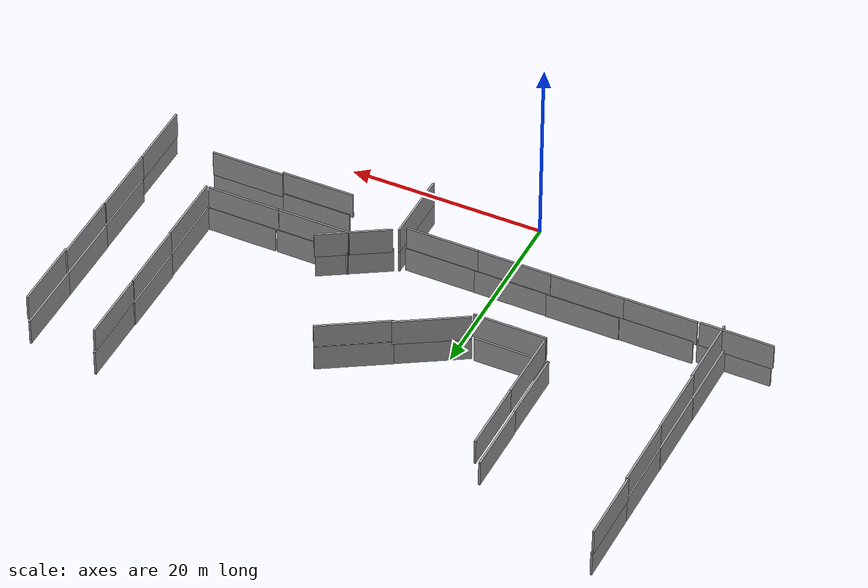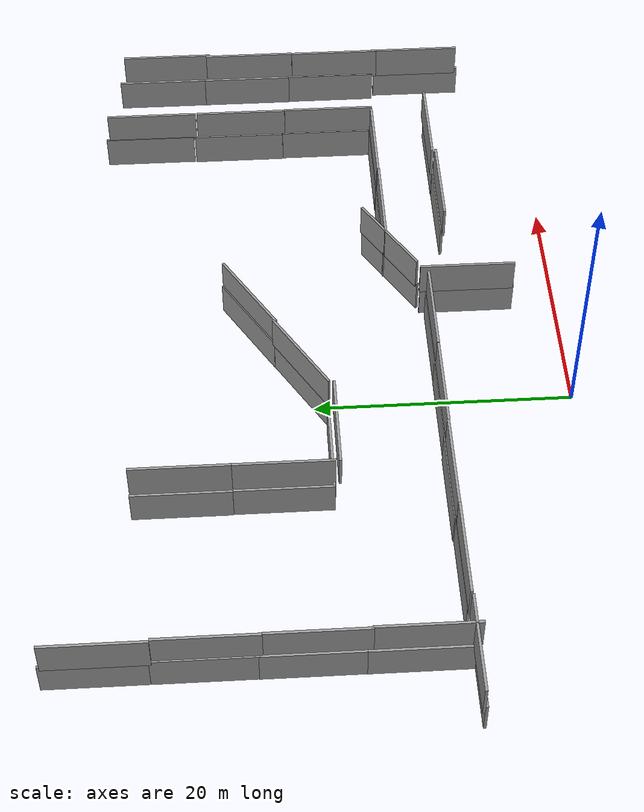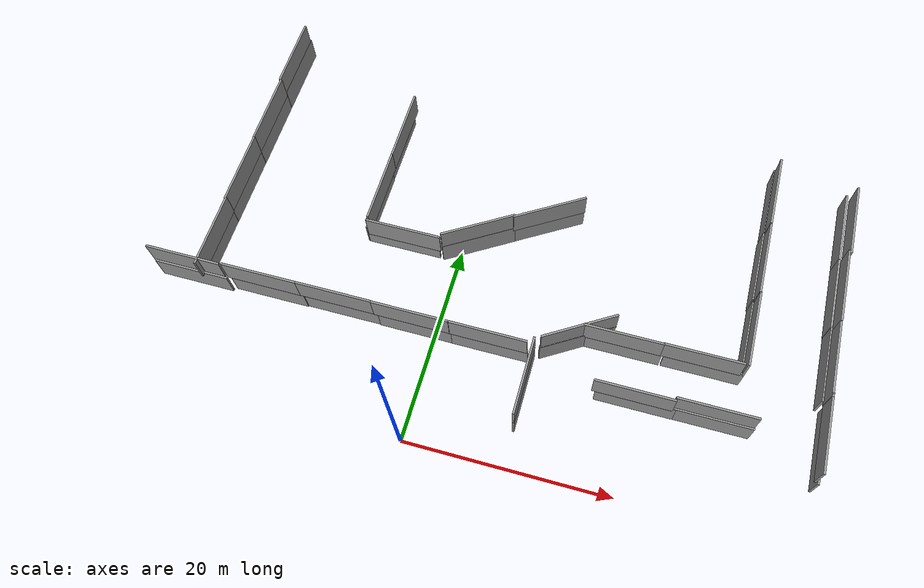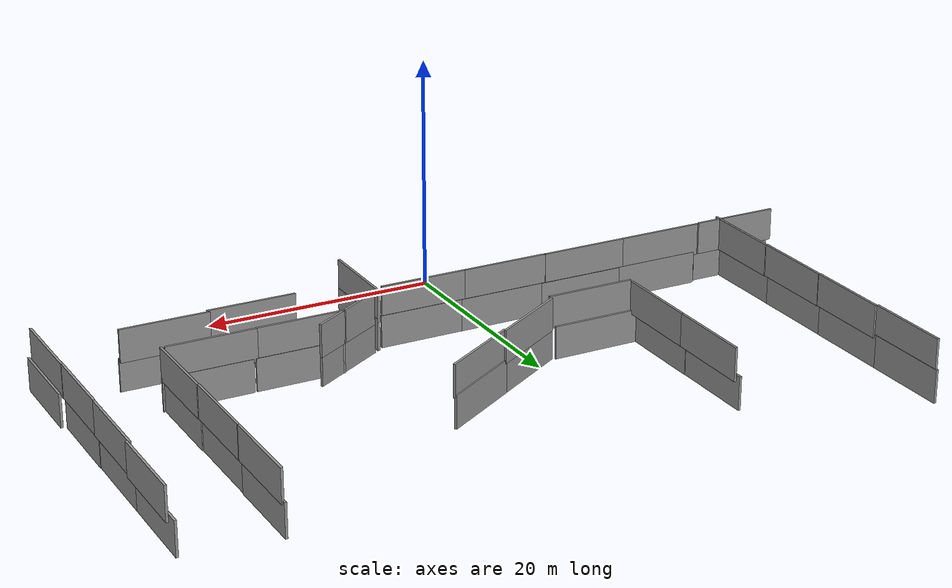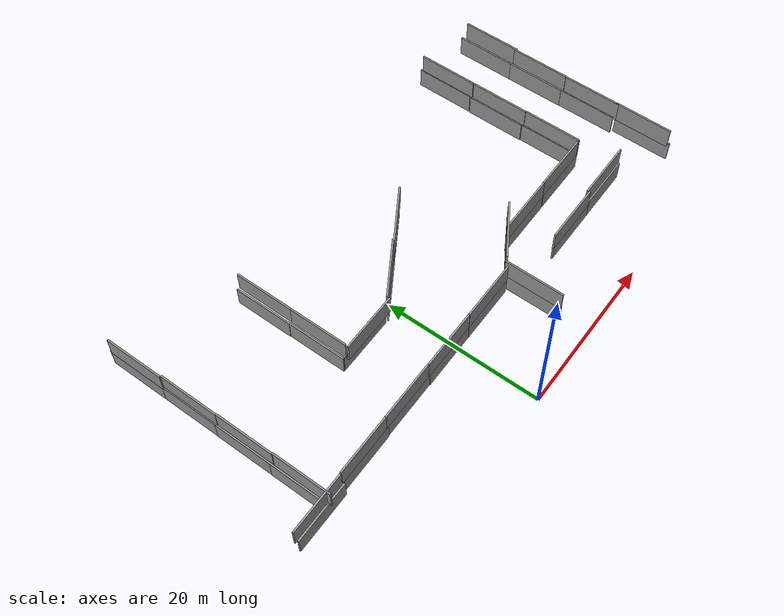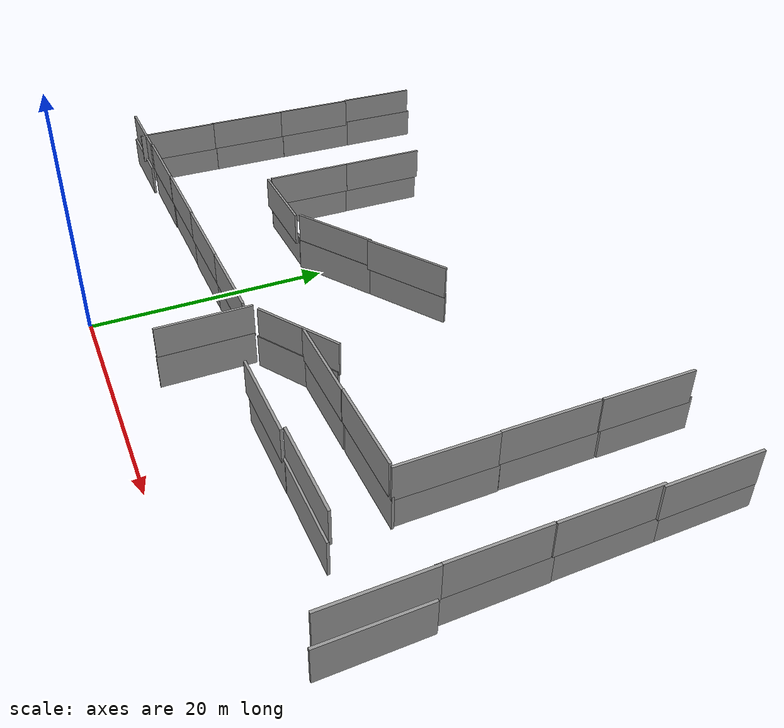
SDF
<sdf version="1.6">
 <world name="world">
  <model name="ground_plane">
   <static>1</static>
   <link name="link">
    <collision name="collision">
     <geometry><plane><normal>0 0 1</normal><size>100 100</size></plane></geometry>
     <surface><friction><ode><mu>100</mu><mu2>50</mu2></ode></friction></surface>
    </collision>
    <velocity_decay><linear>0</linear><angular>0</angular></velocity_decay>
   </link>
  </model>
  <model name="grey_wall_clone_clone_clone_clone">
   <static>1</static>
   <link name="link">
    <pose>0 0 1.4 0 -0 0</pose>
    <collision name="collision"><geometry><box><size>7.5 0.2 2.8</size></box></geometry></collision>
    <visual name="visual">
     <cast_shadows>0</cast_shadows>
     <geometry><box><size>7.5 0.2 2.8</size></box></geometry>
     <material>
      <script>
       <uri>model://grey_wall/materials/scripts</uri>
       <uri>model://grey_wall/materials/textures</uri>
       <name>vrc/grey_wall</name>
      </script>
     </material>
    </visual>
   </link>
   <pose>9.72423 7.25977 0 0 -0 1.57</pose>
  </model>
  <model name="grey_wall_clone_clone_clone_0">
   <static>1</static>
   <link name="link">
    <pose>0 0 1.4 0 -0 0</pose>
    <collision name="collision"><geometry><box><size>7.5 0.2 2.8</size></box></geometry></collision>
    <visual name="visual">
     <cast_shadows>0</cast_shadows>
     <geometry><box><size>7.5 0.2 2.8</size></box></geometry>
     <material>
      <script>
       <uri>model://grey_wall/materials/scripts</uri>
       <uri>model://grey_wall/materials/textures</uri>
       <name>vrc/grey_wall</name>
      </script>
     </material>
    </visual>
   </link>
   <pose>9.7042 7.30584 2.5 0 -0 1.57</pose>
  </model>
  <model name="grey_wall_clone_0">
   <static>1</static>
   <link name="link">
    <pose>0 0 1.4 0 -0 0</pose>
    <collision name="collision"><geometry><box><size>7.5 0.2 2.8</size></box></geometry></collision>
    <visual name="visual">
     <cast_shadows>0</cast_shadows>
     <geometry><box><size>7.5 0.2 2.8</size></box></geometry>
     <material>
      <script>
       <uri>model://grey_wall/materials/scripts</uri>
       <uri>model://grey_wall/materials/textures</uri>
       <name>vrc/grey_wall</name>
      </script>
     </material>
    </visual>
   </link>
   <pose>5.52403 10.5022 0 0 -0 0</pose>
  </model>
  <model name="grey_wall_clone_clone_0">
   <static>1</static>
   <link name="link">
    <pose>0 0 1.4 0 -0 0</pose>
    <collision name="collision"><geometry><box><size>7.5 0.2 2.8</size></box></geometry></collision>
    <visual name="visual">
     <cast_shadows>0</cast_shadows>
     <geometry><box><size>7.5 0.2 2.8</size></box></geometry>
     <material>
      <script>
       <uri>model://grey_wall/materials/scripts</uri>
       <uri>model://grey_wall/materials/textures</uri>
       <name>vrc/grey_wall</name>
      </script>
     </material>
    </visual>
   </link>
   <pose>5.43048 10.4463 2.5 0 -0 0</pose>
  </model>
  <model name="grey_wall_clone_0_clone">
   <static>1</static>
   <link name="link">
    <pose>0 0 1.4 0 -0 0</pose>
    <collision name="collision"><geometry><box><size>7.5 0.2 2.8</size></box></geometry></collision>
    <visual name="visual">
     <cast_shadows>0</cast_shadows>
     <geometry><box><size>7.5 0.2 2.8</size></box></geometry>
     <material>
      <script>
       <uri>model://grey_wall/materials/scripts</uri>
       <uri>model://grey_wall/materials/textures</uri>
       <name>vrc/grey_wall</name>
      </script>
     </material>
    </visual>
   </link>
   <pose>-1.73699 10.5164 0 0 -0 0</pose>
  </model>
  <model name="grey_wall_clone_clone_0_clone">
   <static>1</static>
   <link name="link">
    <pose>0 0 1.4 0 -0 0</pose>
    <collision name="collision"><geometry><box><size>7.5 0.2 2.8</size></box></geometry></collision>
    <visual name="visual">
     <cast_shadows>0</cast_shadows>
     <geometry><box><size>7.5 0.2 2.8</size></box></geometry>
     <material>
      <script>
       <uri>model://grey_wall/materials/scripts</uri>
       <uri>model://grey_wall/materials/textures</uri>
       <name>vrc/grey_wall</name>
      </script>
     </material>
    </visual>
   </link>
   <pose>-2.10122 10.4554 2.5 0 -0 0</pose>
  </model>
  <model name="grey_wall_clone_clone_clone_clone_clone_0_clone_0_clone_0_clone_2">
   <static>1</static>
   <link name="link">
    <pose>0 0 1.4 0 -0 0</pose>
    <collision name="collision"><geometry><box><size>7.5 0.2 2.8</size></box></geometry></collision>
    <visual name="visual">
     <cast_shadows>0</cast_shadows>
     <geometry><box><size>7.5 0.2 2.8</size></box></geometry>
     <material>
      <script>
       <uri>model://grey_wall/materials/scripts</uri>
       <uri>model://grey_wall/materials/textures</uri>
       <name>vrc/grey_wall</name>
      </script>
     </material>
    </visual>
   </link>
   <pose>36.766 8.89985 0 0 -0 1.57</pose>
  </model>
  <model name="grey_wall_clone_clone_clone_0_clone_0_clone_0_clone_0_clone_clone_1">
   <static>1</static>
   <link name="link">
    <pose>0 0 1.4 0 -0 0</pose>
    <collision name="collision"><geometry><box><size>7.5 0.2 2.8</size></box></geometry></collision>
    <visual name="visual">
     <cast_shadows>0</cast_shadows>
     <geometry><box><size>7.5 0.2 2.8</size></box></geometry>
     <material>
      <script>
       <uri>model://grey_wall/materials/scripts</uri>
       <uri>model://grey_wall/materials/textures</uri>
       <name>vrc/grey_wall</name>
      </script>
     </material>
    </visual>
   </link>
   <pose>36.5068 9.13269 2.5 0 -0 1.57</pose>
  </model>
  <model name="grey_wall_clone_1_clone_clone_0">
   <static>1</static>
   <link name="link">
    <pose>0 0 1.4 0 -0 0</pose>
    <collision name="collision"><geometry><box><size>7.5 0.2 2.8</size></box></geometry></collision>
    <visual name="visual">
     <cast_shadows>0</cast_shadows>
     <geometry><box><size>7.5 0.2 2.8</size></box></geometry>
     <material>
      <script>
       <uri>model://grey_wall/materials/scripts</uri>
       <uri>model://grey_wall/materials/textures</uri>
       <name>vrc/grey_wall</name>
      </script>
     </material>
    </visual>
   </link>
   <pose>25.3238 13.5362 0 0 -0 0</pose>
  </model>
  <model name="grey_wall_clone_1_clone_clone_1">
   <static>1</static>
   <link name="link">
    <pose>0 0 1.4 0 -0 0</pose>
    <collision name="collision"><geometry><box><size>7.5 0.2 2.8</size></box></geometry></collision>
    <visual name="visual">
     <cast_shadows>0</cast_shadows>
     <geometry><box><size>7.5 0.2 2.8</size></box></geometry>
     <material>
      <script>
       <uri>model://grey_wall/materials/scripts</uri>
       <uri>model://grey_wall/materials/textures</uri>
       <name>vrc/grey_wall</name>
      </script>
     </material>
    </visual>
   </link>
   <pose>17.6484 13.518 0 0 -0 0</pose>
  </model>
  <model name="grey_wall_clone_clone_2_clone_0_clone_0">
   <static>1</static>
   <link name="link">
    <pose>0 0 1.4 0 -0 0</pose>
    <collision name="collision"><geometry><box><size>7.5 0.2 2.8</size></box></geometry></collision>
    <visual name="visual">
     <cast_shadows>0</cast_shadows>
     <geometry><box><size>7.5 0.2 2.8</size></box></geometry>
     <material>
      <script>
       <uri>model://grey_wall/materials/scripts</uri>
       <uri>model://grey_wall/materials/textures</uri>
       <name>vrc/grey_wall</name>
      </script>
     </material>
    </visual>
   </link>
   <pose>24.947 13.4906 2.5 0 -0 0</pose>
  </model>
  <model name="grey_wall_clone_clone_2_clone_0_clone_1">
   <static>1</static>
   <link name="link">
    <pose>0 0 1.4 0 -0 0</pose>
    <collision name="collision"><geometry><box><size>7.5 0.2 2.8</size></box></geometry></collision>
    <visual name="visual">
     <cast_shadows>0</cast_shadows>
     <geometry><box><size>7.5 0.2 2.8</size></box></geometry>
     <material>
      <script>
       <uri>model://grey_wall/materials/scripts</uri>
       <uri>model://grey_wall/materials/textures</uri>
       <name>vrc/grey_wall</name>
      </script>
     </material>
    </visual>
   </link>
   <pose>17.5123 13.4523 2.5 0 -0 0</pose>
  </model>
  <model name="grey_wall_clone_1_clone_clone_2_clone">
   <static>1</static>
   <link name="link">
    <pose>0 0 1.4 0 -0 0</pose>
    <collision name="collision"><geometry><box><size>7.5 0.2 2.8</size></box></geometry></collision>
    <visual name="visual">
     <cast_shadows>0</cast_shadows>
     <geometry><box><size>7.5 0.2 2.8</size></box></geometry>
     <material>
      <script>
       <uri>model://grey_wall/materials/scripts</uri>
       <uri>model://grey_wall/materials/textures</uri>
       <name>vrc/grey_wall</name>
      </script>
     </material>
    </visual>
   </link>
   <pose>13.3998 13.0991 -0 0 -0 0.55</pose>
  </model>
  <model name="grey_wall_clone_1_clone_clone_2_clone_0">
   <static>1</static>
   <link name="link">
    <pose>0 0 1.4 0 -0 0</pose>
    <collision name="collision"><geometry><box><size>7.5 0.2 2.8</size></box></geometry></collision>
    <visual name="visual">
     <cast_shadows>0</cast_shadows>
     <geometry><box><size>7.5 0.2 2.8</size></box></geometry>
     <material>
      <script>
       <uri>model://grey_wall/materials/scripts</uri>
       <uri>model://grey_wall/materials/textures</uri>
       <name>vrc/grey_wall</name>
      </script>
     </material>
    </visual>
   </link>
   <pose>13.4572 13.209 2.5 0 -0 0.55</pose>
  </model>
  <model name="grey_wall_clone_1_clone_0_clone">
   <static>1</static>
   <link name="link">
    <pose>0 0 1.4 0 -0 0</pose>
    <collision name="collision"><geometry><box><size>7.5 0.2 2.8</size></box></geometry></collision>
    <visual name="visual">
     <cast_shadows>0</cast_shadows>
     <geometry><box><size>7.5 0.2 2.8</size></box></geometry>
     <material>
      <script>
       <uri>model://grey_wall/materials/scripts</uri>
       <uri>model://grey_wall/materials/textures</uri>
       <name>vrc/grey_wall</name>
      </script>
     </material>
    </visual>
   </link>
   <pose>26.9868 8.61492 0 0 -0 0</pose>
  </model>
  <model name="grey_wall_clone_1_clone_0_clone_0">
   <static>1</static>
   <link name="link">
    <pose>0 0 1.4 0 -0 0</pose>
    <collision name="collision"><geometry><box><size>7.5 0.2 2.8</size></box></geometry></collision>
    <visual name="visual">
     <cast_shadows>0</cast_shadows>
     <geometry><box><size>7.5 0.2 2.8</size></box></geometry>
     <material>
      <script>
       <uri>model://grey_wall/materials/scripts</uri>
       <uri>model://grey_wall/materials/textures</uri>
       <name>vrc/grey_wall</name>
      </script>
     </material>
    </visual>
   </link>
   <pose>19.8813 8.59599 0 0 -0 0</pose>
  </model>
  <model name="grey_wall_clone_clone_2_clone_0_clone_2">
   <static>1</static>
   <link name="link">
    <pose>0 0 1.4 0 -0 0</pose>
    <collision name="collision"><geometry><box><size>7.5 0.2 2.8</size></box></geometry></collision>
    <visual name="visual">
     <cast_shadows>0</cast_shadows>
     <geometry><box><size>7.5 0.2 2.8</size></box></geometry>
     <material>
      <script>
       <uri>model://grey_wall/materials/scripts</uri>
       <uri>model://grey_wall/materials/textures</uri>
       <name>vrc/grey_wall</name>
      </script>
     </material>
    </visual>
   </link>
   <pose>26.9348 8.78503 2.5 0 -0 0</pose>
  </model>
  <model name="grey_wall_clone_clone_2_clone_0_clone_3">
   <static>1</static>
   <link name="link">
    <pose>0 0 1.4 0 -0 0</pose>
    <collision name="collision"><geometry><box><size>7.5 0.2 2.8</size></box></geometry></collision>
    <visual name="visual">
     <cast_shadows>0</cast_shadows>
     <geometry><box><size>7.5 0.2 2.8</size></box></geometry>
     <material>
      <script>
       <uri>model://grey_wall/materials/scripts</uri>
       <uri>model://grey_wall/materials/textures</uri>
       <name>vrc/grey_wall</name>
      </script>
     </material>
    </visual>
   </link>
   <pose>19.5591 8.50168 2.5 0 -0 0</pose>
  </model>
  <model name="grey_wall_clone_clone_0_clone_clone_clone">
   <static>1</static>
   <link name="link">
    <pose>0 0 1.4 0 -0 0</pose>
    <collision name="collision"><geometry><box><size>7.5 0.2 2.8</size></box></geometry></collision>
    <visual name="visual">
     <cast_shadows>0</cast_shadows>
     <geometry><box><size>7.5 0.2 2.8</size></box></geometry>
     <material>
      <script>
       <uri>model://grey_wall/materials/scripts</uri>
       <uri>model://grey_wall/materials/textures</uri>
       <name>vrc/grey_wall</name>
      </script>
     </material>
    </visual>
   </link>
   <pose>-9.61987 10.4873 2.5 0 -0 0</pose>
  </model>
  <model name="grey_wall_clone_0_clone_clone_0">
   <static>1</static>
   <link name="link">
    <pose>0 0 1.4 0 -0 0</pose>
    <collision name="collision"><geometry><box><size>7.5 0.2 2.8</size></box></geometry></collision>
    <visual name="visual">
     <cast_shadows>0</cast_shadows>
     <geometry><box><size>7.5 0.2 2.8</size></box></geometry>
     <material>
      <script>
       <uri>model://grey_wall/materials/scripts</uri>
       <uri>model://grey_wall/materials/textures</uri>
       <name>vrc/grey_wall</name>
      </script>
     </material>
    </visual>
   </link>
   <pose>-9.23745 10.5709 0 0 -0 0</pose>
  </model>
  <model name="grey_wall_clone_0_clone_clone_0_clone">
   <static>1</static>
   <link name="link">
    <pose>0 0 1.4 0 -0 0</pose>
    <collision name="collision"><geometry><box><size>7.5 0.2 2.8</size></box></geometry></collision>
    <visual name="visual">
     <cast_shadows>0</cast_shadows>
     <geometry><box><size>7.5 0.2 2.8</size></box></geometry>
     <material>
      <script>
       <uri>model://grey_wall/materials/scripts</uri>
       <uri>model://grey_wall/materials/textures</uri>
       <name>vrc/grey_wall</name>
      </script>
     </material>
    </visual>
   </link>
   <pose>-16.7445 10.4949 0 0 -0 0</pose>
  </model>
  <model name="grey_wall_clone_clone_0_clone_clone_clone_clone">
   <static>1</static>
   <link name="link">
    <pose>0 0 1.4 0 -0 0</pose>
    <collision name="collision"><geometry><box><size>7.5 0.2 2.8</size></box></geometry></collision>
    <visual name="visual">
     <cast_shadows>0</cast_shadows>
     <geometry><box><size>7.5 0.2 2.8</size></box></geometry>
     <material>
      <script>
       <uri>model://grey_wall/materials/scripts</uri>
       <uri>model://grey_wall/materials/textures</uri>
       <name>vrc/grey_wall</name>
      </script>
     </material>
    </visual>
   </link>
   <pose>-17.0835 10.4723 2.5 0 -0 0</pose>
  </model>
  <model name="grey_wall_clone_clone_clone_clone_clone_0_clone_0_clone_0_clone_2_clone">
   <static>1</static>
   <link name="link">
    <pose>0 0 1.4 0 -0 0</pose>
    <collision name="collision"><geometry><box><size>7.5 0.2 2.8</size></box></geometry></collision>
    <visual name="visual">
     <cast_shadows>0</cast_shadows>
     <geometry><box><size>7.5 0.2 2.8</size></box></geometry>
     <material>
      <script>
       <uri>model://grey_wall/materials/scripts</uri>
       <uri>model://grey_wall/materials/textures</uri>
       <name>vrc/grey_wall</name>
      </script>
     </material>
    </visual>
   </link>
   <pose>36.3415 16.5605 0 0 -0 1.57</pose>
  </model>
  <model name="grey_wall_clone_clone_clone_clone_clone_0_clone_0_clone_0_clone_2_clone_0">
   <static>1</static>
   <link name="link">
    <pose>0 0 1.4 0 -0 0</pose>
    <collision name="collision"><geometry><box><size>7.5 0.2 2.8</size></box></geometry></collision>
    <visual name="visual">
     <cast_shadows>0</cast_shadows>
     <geometry><box><size>7.5 0.2 2.8</size></box></geometry>
     <material>
      <script>
       <uri>model://grey_wall/materials/scripts</uri>
       <uri>model://grey_wall/materials/textures</uri>
       <name>vrc/grey_wall</name>
      </script>
     </material>
    </visual>
   </link>
   <pose>36.3089 24.0074 0 0 -0 1.57</pose>
  </model>
  <model name="grey_wall_clone_clone_clone_clone_clone_0_clone_0_clone_0_clone_2_clone_1">
   <static>1</static>
   <link name="link">
    <pose>0 0 1.4 0 -0 0</pose>
    <collision name="collision"><geometry><box><size>7.5 0.2 2.8</size></box></geometry></collision>
    <visual name="visual">
     <cast_shadows>0</cast_shadows>
     <geometry><box><size>7.5 0.2 2.8</size></box></geometry>
     <material>
      <script>
       <uri>model://grey_wall/materials/scripts</uri>
       <uri>model://grey_wall/materials/textures</uri>
       <name>vrc/grey_wall</name>
      </script>
     </material>
    </visual>
   </link>
   <pose>36.3137 31.4883 0 0 -0 1.57</pose>
  </model>
  <model name="grey_wall_clone_clone_clone_0_clone_0_clone_0_clone_0_clone_clone_1_clone">
   <static>1</static>
   <link name="link">
    <pose>0 0 1.4 0 -0 0</pose>
    <collision name="collision"><geometry><box><size>7.5 0.2 2.8</size></box></geometry></collision>
    <visual name="visual">
     <cast_shadows>0</cast_shadows>
     <geometry><box><size>7.5 0.2 2.8</size></box></geometry>
     <material>
      <script>
       <uri>model://grey_wall/materials/scripts</uri>
       <uri>model://grey_wall/materials/textures</uri>
       <name>vrc/grey_wall</name>
      </script>
     </material>
    </visual>
   </link>
   <pose>36.4797 16.2032 2.5 0 -0 1.57</pose>
  </model>
  <model name="grey_wall_clone_clone_clone_0_clone_0_clone_0_clone_0_clone_clone_1_clone_0">
   <static>1</static>
   <link name="link">
    <pose>0 0 1.4 0 -0 0</pose>
    <collision name="collision"><geometry><box><size>7.5 0.2 2.8</size></box></geometry></collision>
    <visual name="visual">
     <cast_shadows>0</cast_shadows>
     <geometry><box><size>7.5 0.2 2.8</size></box></geometry>
     <material>
      <script>
       <uri>model://grey_wall/materials/scripts</uri>
       <uri>model://grey_wall/materials/textures</uri>
       <name>vrc/grey_wall</name>
      </script>
     </material>
    </visual>
   </link>
   <pose>36.5252 23.7606 2.5 0 -0 1.57</pose>
  </model>
  <model name="grey_wall_clone_clone_clone_0_clone_0_clone_0_clone_0_clone_clone_1_clone_1">
   <static>1</static>
   <link name="link">
    <pose>0 0 1.4 0 -0 0</pose>
    <collision name="collision"><geometry><box><size>7.5 0.2 2.8</size></box></geometry></collision>
    <visual name="visual">
     <cast_shadows>0</cast_shadows>
     <geometry><box><size>7.5 0.2 2.8</size></box></geometry>
     <material>
      <script>
       <uri>model://grey_wall/materials/scripts</uri>
       <uri>model://grey_wall/materials/textures</uri>
       <name>vrc/grey_wall</name>
      </script>
     </material>
    </visual>
   </link>
   <pose>36.7015 30.9843 2.5 0 -0 1.57</pose>
  </model>
  <model name="grey_wall_clone_clone_clone_clone_clone_clone_clone_0_clone_1">
   <static>1</static>
   <link name="link">
    <pose>0 0 1.4 0 -0 0</pose>
    <collision name="collision"><geometry><box><size>7.5 0.2 2.8</size></box></geometry></collision>
    <visual name="visual">
     <cast_shadows>0</cast_shadows>
     <geometry><box><size>7.5 0.2 2.8</size></box></geometry>
     <material>
      <script>
       <uri>model://grey_wall/materials/scripts</uri>
       <uri>model://grey_wall/materials/textures</uri>
       <name>vrc/grey_wall</name>
      </script>
     </material>
    </visual>
   </link>
   <pose>-23.473 36.1439 0 0 -0 1.57</pose>
  </model>
  <model name="grey_wall_clone_clone_clone_clone_clone_clone_clone_0_clone_2">
   <static>1</static>
   <link name="link">
    <pose>0 0 1.4 0 -0 0</pose>
    <collision name="collision"><geometry><box><size>7.5 0.2 2.8</size></box></geometry></collision>
    <visual name="visual">
     <cast_shadows>0</cast_shadows>
     <geometry><box><size>7.5 0.2 2.8</size></box></geometry>
     <material>
      <script>
       <uri>model://grey_wall/materials/scripts</uri>
       <uri>model://grey_wall/materials/textures</uri>
       <name>vrc/grey_wall</name>
      </script>
     </material>
    </visual>
   </link>
   <pose>-23.4833 28.6502 0 0 -0 1.57</pose>
  </model>
  <model name="grey_wall_clone_clone_clone_clone_clone_clone_clone_0_clone_3">
   <static>1</static>
   <link name="link">
    <pose>0 0 1.4 0 -0 0</pose>
    <collision name="collision"><geometry><box><size>7.5 0.2 2.8</size></box></geometry></collision>
    <visual name="visual">
     <cast_shadows>0</cast_shadows>
     <geometry><box><size>7.5 0.2 2.8</size></box></geometry>
     <material>
      <script>
       <uri>model://grey_wall/materials/scripts</uri>
       <uri>model://grey_wall/materials/textures</uri>
       <name>vrc/grey_wall</name>
      </script>
     </material>
    </visual>
   </link>
   <pose>-23.5068 21.2609 0 0 -0 1.57</pose>
  </model>
  <model name="grey_wall_clone_clone_clone_clone_clone_clone_clone_0_clone_3_clone">
   <static>1</static>
   <link name="link">
    <pose>0 0 1.4 0 -0 0</pose>
    <collision name="collision"><geometry><box><size>7.5 0.2 2.8</size></box></geometry></collision>
    <visual name="visual">
     <cast_shadows>0</cast_shadows>
     <geometry><box><size>7.5 0.2 2.8</size></box></geometry>
     <material>
      <script>
       <uri>model://grey_wall/materials/scripts</uri>
       <uri>model://grey_wall/materials/textures</uri>
       <name>vrc/grey_wall</name>
      </script>
     </material>
    </visual>
   </link>
   <pose>-23.5242 13.8853 0 0 -0 1.57</pose>
  </model>
  <model name="grey_wall_clone_0_clone_clone_0_clone_0">
   <static>1</static>
   <link name="link">
    <pose>0 0 1.4 0 -0 0</pose>
    <collision name="collision"><geometry><box><size>7.5 0.2 2.8</size></box></geometry></collision>
    <visual name="visual">
     <cast_shadows>0</cast_shadows>
     <geometry><box><size>7.5 0.2 2.8</size></box></geometry>
     <material>
      <script>
       <uri>model://grey_wall/materials/scripts</uri>
       <uri>model://grey_wall/materials/textures</uri>
       <name>vrc/grey_wall</name>
      </script>
     </material>
    </visual>
   </link>
   <pose>-24.5011 10.1445 0 0 -0 0</pose>
  </model>
  <model name="grey_wall_clone_clone_clone_clone_clone_0_clone_0_clone_0_clone_2_clone_clone_3_clone_2">
   <static>1</static>
   <link name="link">
    <pose>0 0 1.4 0 -0 0</pose>
    <collision name="collision"><geometry><box><size>7.5 0.2 2.8</size></box></geometry></collision>
    <visual name="visual">
     <cast_shadows>0</cast_shadows>
     <geometry><box><size>7.5 0.2 2.8</size></box></geometry>
     <material>
      <script>
       <uri>model://grey_wall/materials/scripts</uri>
       <uri>model://grey_wall/materials/textures</uri>
       <name>vrc/grey_wall</name>
      </script>
     </material>
    </visual>
   </link>
   <pose>-9.5717 30.1479 0 0 -0 1.57</pose>
  </model>
  <model name="grey_wall_clone_clone_clone_clone_clone_0_clone_0_clone_0_clone_2_clone_clone_3_clone_3">
   <static>1</static>
   <link name="link">
    <pose>0 0 1.4 0 -0 0</pose>
    <collision name="collision"><geometry><box><size>7.5 0.2 2.8</size></box></geometry></collision>
    <visual name="visual">
     <cast_shadows>0</cast_shadows>
     <geometry><box><size>7.5 0.2 2.8</size></box></geometry>
     <material>
      <script>
       <uri>model://grey_wall/materials/scripts</uri>
       <uri>model://grey_wall/materials/textures</uri>
       <name>vrc/grey_wall</name>
      </script>
     </material>
    </visual>
   </link>
   <pose>-9.5391 22.7069 0 0 -0 1.57</pose>
  </model>
  <model name="grey_wall_clone_1_clone_clone_0_clone_0_clone_1_clone_clone_0">
   <static>1</static>
   <link name="link">
    <pose>0 0 1.4 0 -0 0</pose>
    <collision name="collision"><geometry><box><size>7.5 0.2 2.8</size></box></geometry></collision>
    <visual name="visual">
     <cast_shadows>0</cast_shadows>
     <geometry><box><size>7.5 0.2 2.8</size></box></geometry>
     <material>
      <script>
       <uri>model://grey_wall/materials/scripts</uri>
       <uri>model://grey_wall/materials/textures</uri>
       <name>vrc/grey_wall</name>
      </script>
     </material>
    </visual>
   </link>
   <pose>-5.75309 19.0274 0 0 -0 0</pose>
  </model>
  <model name="grey_wall_clone_1_clone_clone_2_clone_clone_0">
   <static>1</static>
   <link name="link">
    <pose>0 0 1.4 0 -0 0</pose>
    <collision name="collision"><geometry><box><size>7.5 0.2 2.8</size></box></geometry></collision>
    <visual name="visual">
     <cast_shadows>0</cast_shadows>
     <geometry><box><size>7.5 0.2 2.8</size></box></geometry>
     <material>
      <script>
       <uri>model://grey_wall/materials/scripts</uri>
       <uri>model://grey_wall/materials/textures</uri>
       <name>vrc/grey_wall</name>
      </script>
     </material>
    </visual>
   </link>
   <pose>1.50407 20.868 -0 0 -0 0.55</pose>
  </model>
  <model name="grey_wall_clone_1_clone_clone_2_clone_clone_1">
   <static>1</static>
   <link name="link">
    <pose>0 0 1.4 0 -0 0</pose>
    <collision name="collision"><geometry><box><size>7.5 0.2 2.8</size></box></geometry></collision>
    <visual name="visual">
     <cast_shadows>0</cast_shadows>
     <geometry><box><size>7.5 0.2 2.8</size></box></geometry>
     <material>
      <script>
       <uri>model://grey_wall/materials/scripts</uri>
       <uri>model://grey_wall/materials/textures</uri>
       <name>vrc/grey_wall</name>
      </script>
     </material>
    </visual>
   </link>
   <pose>7.72291 24.7001 -0 0 -0 0.55</pose>
  </model>
  <model name="grey_wall_clone_clone_clone_clone_clone_0_clone_0_clone_0_clone_2_clone_5">
   <static>1</static>
   <link name="link">
    <pose>0 0 1.4 0 -0 0</pose>
    <collision name="collision"><geometry><box><size>7.5 0.2 2.8</size></box></geometry></collision>
    <visual name="visual">
     <cast_shadows>0</cast_shadows>
     <geometry><box><size>7.5 0.2 2.8</size></box></geometry>
     <material>
      <script>
       <uri>model://grey_wall/materials/scripts</uri>
       <uri>model://grey_wall/materials/textures</uri>
       <name>vrc/grey_wall</name>
      </script>
     </material>
    </visual>
   </link>
   <pose>28.8349 17.386 0 0 -0 1.57</pose>
  </model>
  <model name="grey_wall_clone_clone_clone_clone_clone_0_clone_0_clone_0_clone_2_clone_6">
   <static>1</static>
   <link name="link">
    <pose>0 0 1.4 0 -0 0</pose>
    <collision name="collision"><geometry><box><size>7.5 0.2 2.8</size></box></geometry></collision>
    <visual name="visual">
     <cast_shadows>0</cast_shadows>
     <geometry><box><size>7.5 0.2 2.8</size></box></geometry>
     <material>
      <script>
       <uri>model://grey_wall/materials/scripts</uri>
       <uri>model://grey_wall/materials/textures</uri>
       <name>vrc/grey_wall</name>
      </script>
     </material>
    </visual>
   </link>
   <pose>28.7752 24.9437 0 0 -0 1.57</pose>
  </model>
  <model name="grey_wall_clone_clone_clone_clone_clone_0_clone_0_clone_0_clone_2_clone_7">
   <static>1</static>
   <link name="link">
    <pose>0 0 1.4 0 -0 0</pose>
    <collision name="collision"><geometry><box><size>7.5 0.2 2.8</size></box></geometry></collision>
    <visual name="visual">
     <cast_shadows>0</cast_shadows>
     <geometry><box><size>7.5 0.2 2.8</size></box></geometry>
     <material>
      <script>
       <uri>model://grey_wall/materials/scripts</uri>
       <uri>model://grey_wall/materials/textures</uri>
       <name>vrc/grey_wall</name>
      </script>
     </material>
    </visual>
   </link>
   <pose>28.8403 32.5574 0 0 -0 1.57</pose>
  </model>
  <model name="grey_wall_clone_clone_clone_0_clone_0_clone_0_clone_0_clone_clone_1_clone_clone">
   <static>1</static>
   <link name="link">
    <pose>0 0 1.4 0 -0 0</pose>
    <collision name="collision"><geometry><box><size>7.5 0.2 2.8</size></box></geometry></collision>
    <visual name="visual">
     <cast_shadows>0</cast_shadows>
     <geometry><box><size>7.5 0.2 2.8</size></box></geometry>
     <material>
      <script>
       <uri>model://grey_wall/materials/scripts</uri>
       <uri>model://grey_wall/materials/textures</uri>
       <name>vrc/grey_wall</name>
      </script>
     </material>
    </visual>
   </link>
   <pose>28.9702 17.1682 2.5 0 -0 1.57</pose>
  </model>
  <model name="grey_wall_clone_clone_clone_0_clone_0_clone_0_clone_0_clone_clone_1_clone_clone_clone">
   <static>1</static>
   <link name="link">
    <pose>0 0 1.4 0 -0 0</pose>
    <collision name="collision"><geometry><box><size>7.5 0.2 2.8</size></box></geometry></collision>
    <visual name="visual">
     <cast_shadows>0</cast_shadows>
     <geometry><box><size>7.5 0.2 2.8</size></box></geometry>
     <material>
      <script>
       <uri>model://grey_wall/materials/scripts</uri>
       <uri>model://grey_wall/materials/textures</uri>
       <name>vrc/grey_wall</name>
      </script>
     </material>
    </visual>
   </link>
   <pose>28.9215 24.6892 2.5 0 -0 1.57</pose>
  </model>
  <model name="grey_wall_clone_clone_clone_0_clone_0_clone_0_clone_0_clone_clone_1_clone_clone_clone_0">
   <static>1</static>
   <link name="link">
    <pose>0 0 1.4 0 -0 0</pose>
    <collision name="collision"><geometry><box><size>7.5 0.2 2.8</size></box></geometry></collision>
    <visual name="visual">
     <cast_shadows>0</cast_shadows>
     <geometry><box><size>7.5 0.2 2.8</size></box></geometry>
     <material>
      <script>
       <uri>model://grey_wall/materials/scripts</uri>
       <uri>model://grey_wall/materials/textures</uri>
       <name>vrc/grey_wall</name>
      </script>
     </material>
    </visual>
   </link>
   <pose>28.9202 32.2853 2.5 0 -0 1.57</pose>
  </model>
  <model name="grey_wall_clone_clone_0_clone_clone">
   <static>1</static>
   <link name="link">
    <pose>0 0 1.4 0 -0 0</pose>
    <collision name="collision"><geometry><box><size>7.5 0.2 2.8</size></box></geometry></collision>
    <visual name="visual">
     <cast_shadows>0</cast_shadows>
     <geometry><box><size>7.5 0.2 2.8</size></box></geometry>
     <material>
      <script>
       <uri>model://grey_wall/materials/scripts</uri>
       <uri>model://grey_wall/materials/textures</uri>
       <name>vrc/grey_wall</name>
      </script>
     </material>
    </visual>
   </link>
   <pose>-5.41608 18.5798 2.5 0 -0 0</pose>
  </model>
  <model name="grey_wall_clone_clone_clone_0_clone_0_clone_0_clone_0_clone_clone_1_clone_4_clone_clone_clone_2">
   <static>1</static>
   <link name="link">
    <pose>0 0 1.4 0 -0 0</pose>
    <collision name="collision"><geometry><box><size>7.5 0.2 2.8</size></box></geometry></collision>
    <visual name="visual">
     <cast_shadows>0</cast_shadows>
     <geometry><box><size>7.5 0.2 2.8</size></box></geometry>
     <material>
      <script>
       <uri>model://grey_wall/materials/scripts</uri>
       <uri>model://grey_wall/materials/textures</uri>
       <name>vrc/grey_wall</name>
      </script>
     </material>
    </visual>
   </link>
   <pose>-23.5033 35.953 2.5 0 -0 1.57</pose>
  </model>
  <model name="grey_wall_clone_clone_clone_0_clone_0_clone_0_clone_0_clone_clone_1_clone_4_clone_clone_clone_3">
   <static>1</static>
   <link name="link">
    <pose>0 0 1.4 0 -0 0</pose>
    <collision name="collision"><geometry><box><size>7.5 0.2 2.8</size></box></geometry></collision>
    <visual name="visual">
     <cast_shadows>0</cast_shadows>
     <geometry><box><size>7.5 0.2 2.8</size></box></geometry>
     <material>
      <script>
       <uri>model://grey_wall/materials/scripts</uri>
       <uri>model://grey_wall/materials/textures</uri>
       <name>vrc/grey_wall</name>
      </script>
     </material>
    </visual>
   </link>
   <pose>-23.3564 28.4543 2.5 0 -0 1.57</pose>
  </model>
  <model name="grey_wall_clone_clone_clone_0_clone_0_clone_0_clone_0_clone_clone_1_clone_4_clone_clone_clone_4">
   <static>1</static>
   <link name="link">
    <pose>0 0 1.4 0 -0 0</pose>
    <collision name="collision"><geometry><box><size>7.5 0.2 2.8</size></box></geometry></collision>
    <visual name="visual">
     <cast_shadows>0</cast_shadows>
     <geometry><box><size>7.5 0.2 2.8</size></box></geometry>
     <material>
      <script>
       <uri>model://grey_wall/materials/scripts</uri>
       <uri>model://grey_wall/materials/textures</uri>
       <name>vrc/grey_wall</name>
      </script>
     </material>
    </visual>
   </link>
   <pose>-23.3169 20.9804 2.5 0 -0 1.57</pose>
  </model>
  <model name="grey_wall_clone_clone_clone_0_clone_0_clone_0_clone_0_clone_clone_1_clone_4_clone_clone_clone_5">
   <static>1</static>
   <link name="link">
    <pose>0 0 1.4 0 -0 0</pose>
    <collision name="collision"><geometry><box><size>7.5 0.2 2.8</size></box></geometry></collision>
    <visual name="visual">
     <cast_shadows>0</cast_shadows>
     <geometry><box><size>7.5 0.2 2.8</size></box></geometry>
     <material>
      <script>
       <uri>model://grey_wall/materials/scripts</uri>
       <uri>model://grey_wall/materials/textures</uri>
       <name>vrc/grey_wall</name>
      </script>
     </material>
    </visual>
   </link>
   <pose>-23.2406 13.6009 2.5 0 -0 1.57</pose>
  </model>
  <model name="grey_wall_clone_clone_0_clone_clone_clone_clone_clone_1">
   <static>1</static>
   <link name="link">
    <pose>0 0 1.4 0 -0 0</pose>
    <collision name="collision"><geometry><box><size>7.5 0.2 2.8</size></box></geometry></collision>
    <visual name="visual">
     <cast_shadows>0</cast_shadows>
     <geometry><box><size>7.5 0.2 2.8</size></box></geometry>
     <material>
      <script>
       <uri>model://grey_wall/materials/scripts</uri>
       <uri>model://grey_wall/materials/textures</uri>
       <name>vrc/grey_wall</name>
      </script>
     </material>
    </visual>
   </link>
   <pose>-24.7558 10.3886 2.5 0 -0 0</pose>
  </model>
  <model name="grey_wall_clone_clone_clone_0_clone_0">
   <static>1</static>
   <link name="link">
    <pose>0 0 1.4 0 -0 0</pose>
    <collision name="collision"><geometry><box><size>7.5 0.2 2.8</size></box></geometry></collision>
    <visual name="visual">
     <cast_shadows>0</cast_shadows>
     <geometry><box><size>7.5 0.2 2.8</size></box></geometry>
     <material>
      <script>
       <uri>model://grey_wall/materials/scripts</uri>
       <uri>model://grey_wall/materials/textures</uri>
       <name>vrc/grey_wall</name>
      </script>
     </material>
    </visual>
   </link>
   <pose>-9.10173 22.6483 2.5 0 -0 1.57</pose>
  </model>
  <model name="grey_wall_clone_clone_clone_0_clone_1">
   <static>1</static>
   <link name="link">
    <pose>0 0 1.4 0 -0 0</pose>
    <collision name="collision"><geometry><box><size>7.5 0.2 2.8</size></box></geometry></collision>
    <visual name="visual">
     <cast_shadows>0</cast_shadows>
     <geometry><box><size>7.5 0.2 2.8</size></box></geometry>
     <material>
      <script>
       <uri>model://grey_wall/materials/scripts</uri>
       <uri>model://grey_wall/materials/textures</uri>
       <name>vrc/grey_wall</name>
      </script>
     </material>
    </visual>
   </link>
   <pose>-9.09434 30.1315 2.5 0 -0 1.57</pose>
  </model>
  <model name="grey_wall_clone_1_clone_clone_2_clone_0_clone">
   <static>1</static>
   <link name="link">
    <pose>0 0 1.4 0 -0 0</pose>
    <collision name="collision"><geometry><box><size>7.5 0.2 2.8</size></box></geometry></collision>
    <visual name="visual">
     <cast_shadows>0</cast_shadows>
     <geometry><box><size>7.5 0.2 2.8</size></box></geometry>
     <material>
      <script>
       <uri>model://grey_wall/materials/scripts</uri>
       <uri>model://grey_wall/materials/textures</uri>
       <name>vrc/grey_wall</name>
      </script>
     </material>
    </visual>
   </link>
   <pose>1.50187 20.908 2.5 0 -0 0.55</pose>
  </model>
  <model name="grey_wall_clone_1_clone_clone_2_clone_0_clone_0">
   <static>1</static>
   <link name="link">
    <pose>0 0 1.4 0 -0 0</pose>
    <collision name="collision"><geometry><box><size>7.5 0.2 2.8</size></box></geometry></collision>
    <visual name="visual">
     <cast_shadows>0</cast_shadows>
     <geometry><box><size>7.5 0.2 2.8</size></box></geometry>
     <material>
      <script>
       <uri>model://grey_wall/materials/scripts</uri>
       <uri>model://grey_wall/materials/textures</uri>
       <name>vrc/grey_wall</name>
      </script>
     </material>
    </visual>
   </link>
   <pose>7.78394 24.6063 2.5 0 -0 0.55</pose>
  </model>
 </world>
</sdf>
